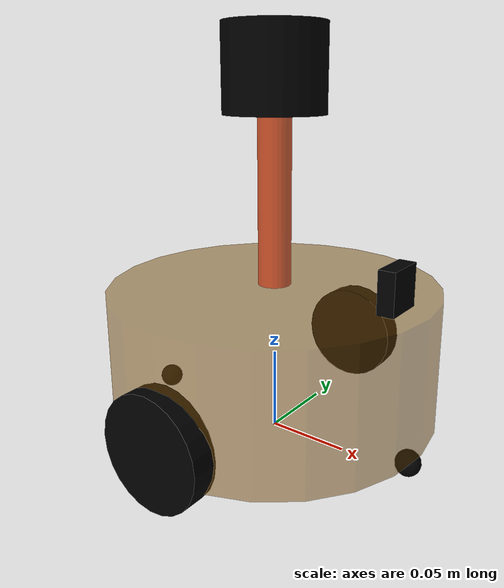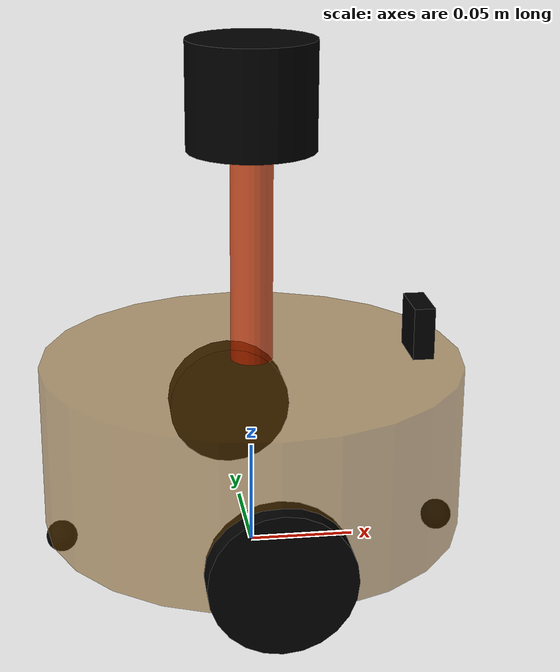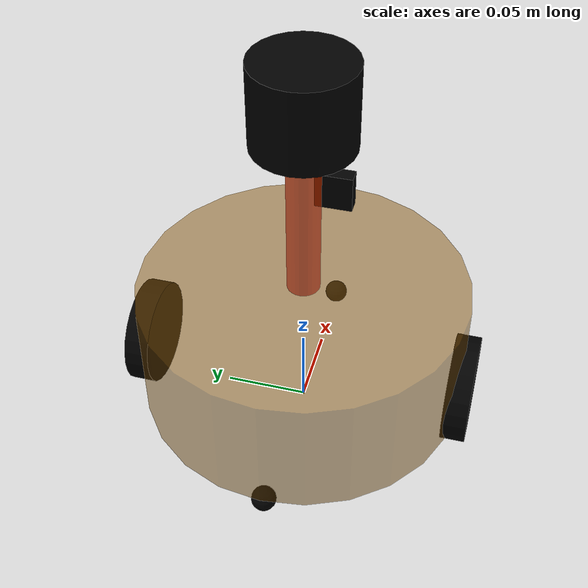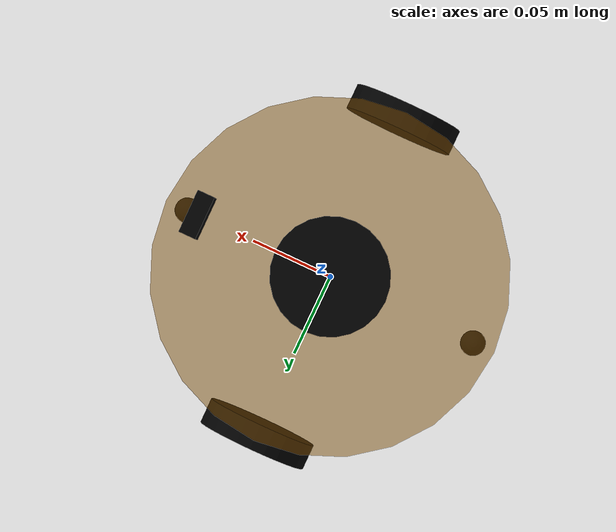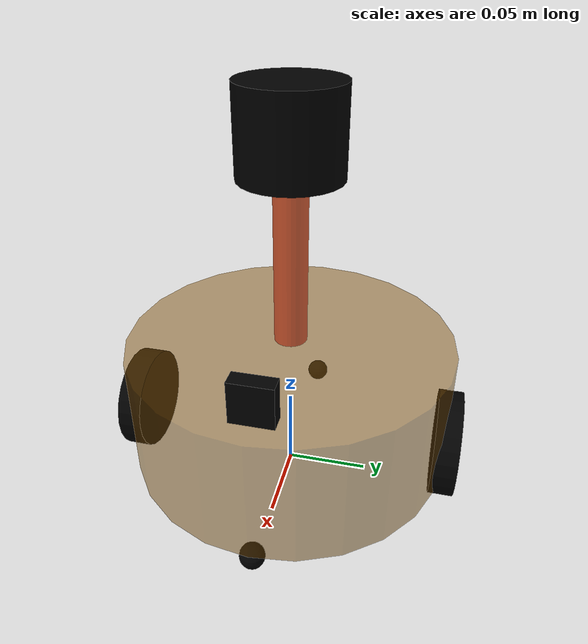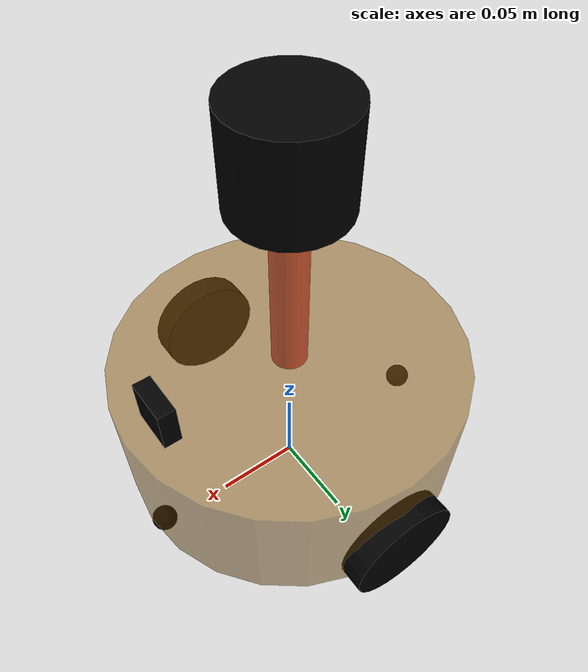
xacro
<!-- combine parts -->
<robot name="my_car_camera" xmlns:xacro="http://wiki.ros.org/xacro">
  <xacro:include filename="head.xacro" />
  <xacro:include filename="base.xacro" />
  <xacro:include filename="camera.xacro" />
  <xacro:include filename="laser.xacro" />
  <xacro:include filename="gazebo/move.xacro" />
  <xacro:include filename="gazebo/laser.xacro" />
  <xacro:include filename="gazebo/camera.xacro" />
</robot>

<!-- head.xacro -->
<robot name="base" xmlns:xacro="http://wiki.ros.org/xacro">
  <!-- Macro for inertia matrix -->
  <xacro:macro name="sphere_inertial_matrix" params="m r">
      <inertial>
          <mass value="${m}" />
          <inertia ixx="${2*m*r*r/5}" ixy="0" ixz="0"
              iyy="${2*m*r*r/5}" iyz="0"
              izz="${2*m*r*r/5}" />
      </inertial>
  </xacro:macro>

  <xacro:macro name="cylinder_inertial_matrix" params="m r h">
      <inertial>
          <mass value="${m}" />
          <inertia ixx="${m*(3*r*r+h*h)/12}" ixy = "0" ixz = "0"
              iyy="${m*(3*r*r+h*h)/12}" iyz = "0"
              izz="${m*r*r/2}" />
      </inertial>
  </xacro:macro>

  <xacro:macro name="Box_inertial_matrix" params="m l w h">
     <inertial>
             <mass value="${m}" />
             <inertia ixx="${m*(h*h + l*l)/12}" ixy = "0" ixz = "0"
                 iyy="${m*(w*w + l*l)/12}" iyz= "0"
                 izz="${m*(w*w + h*h)/12}" />
     </inertial>
 </xacro:macro>
</robot>

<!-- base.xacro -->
<robot name="my_base" xmlns:xacro="http://www.ros.org/wiki/xacro">
  <xacro:property name="PI" value="3.1415926"/>
  <material name="black">
      <color rgba="0.0 0.0 0.0 1.0" />
  </material>
  <xacro:property name="base_footprint_radius" value="0.001" /> <!-- base_footprint radius  -->
  <xacro:property name="base_link_radius" value="0.1" /> <!-- base_link radius -->
  <xacro:property name="base_link_length" value="0.08" /> <!-- base_link long -->
  <xacro:property name="earth_space" value="0.015" /> <!-- gap to ground -->
  <xacro:property name="base_link_m" value="0.5" /> <!-- mass  -->

  <link name="base_footprint">
    <visual>
      <geometry>
        <sphere radius="${base_footprint_radius}" />
      </geometry>
    </visual>
  </link>

  <link name="base_link">
    <visual>
      <geometry>
        <cylinder radius="${base_link_radius}" length="${base_link_length}" />
      </geometry>
      <origin xyz="0 0 0" rpy="0 0 0" />
      <material name="yellow">
        <color rgba="0.5 0.3 0.0 0.5" />
      </material>
    </visual>
    <collision>
      <geometry>
        <cylinder radius="${base_link_radius}" length="${base_link_length}" />
      </geometry>
      <origin xyz="0 0 0" rpy="0 0 0" />
    </collision>
    <xacro:cylinder_inertial_matrix m="${base_link_m}" r="${base_link_radius}" h="${base_link_length}" />

  </link>

  <joint name="base_link2base_footprint" type="fixed">
    <parent link="base_footprint" />
    <child link="base_link" />
    <origin xyz="0 0 ${earth_space + base_link_length / 2 }" />
  </joint>
  <gazebo reference="base_link">
      <material>Gazebo/Green</material>
  </gazebo>

  <xacro:property name="wheel_radius" value="0.0325" /><!-- radius -->
  <xacro:property name="wheel_length" value="0.015" /><!-- width -->
  <xacro:property name="wheel_m" value="0.05" /> <!-- mass  -->

  <xacro:macro name="add_wheels" params="name flag">
    <link name="${name}_wheel">
      <visual>
        <geometry>
          <cylinder radius="${wheel_radius}" length="${wheel_length}" />
        </geometry>
        <origin xyz="0.0 0.0 0.0" rpy="${PI / 2} 0.0 0.0" />
        <material name="black" />
      </visual>
      <collision>
        <geometry>
          <cylinder radius="${wheel_radius}" length="${wheel_length}" />
        </geometry>
        <origin xyz="0.0 0.0 0.0" rpy="${PI / 2} 0.0 0.0" />
      </collision>
      <xacro:cylinder_inertial_matrix m="${wheel_m}" r="${wheel_radius}" h="${wheel_length}" />

    </link>

    <joint name="${name}_wheel2base_link" type="continuous">
      <parent link="base_link" />
      <child link="${name}_wheel" />
      <origin xyz="0 ${flag * base_link_radius} ${-(earth_space + base_link_length / 2 - wheel_radius) }" />
      <axis xyz="0 1 0" />
    </joint>

    <gazebo reference="${name}_wheel">
      <material>Gazebo/Red</material>
    </gazebo>

  </xacro:macro>
  <xacro:add_wheels name="left" flag="1" />
  <xacro:add_wheels name="right" flag="-1" />

  <xacro:property name="support_wheel_radius" value="0.0075" />
  <xacro:property name="support_wheel_m" value="0.03" /> <!-- mass  -->

  <xacro:macro name="add_support_wheel" params="name flag" >
    <link name="${name}_wheel">
      <visual>
          <geometry>
              <sphere radius="${support_wheel_radius}" />
          </geometry>
          <origin xyz="0 0 0" rpy="0 0 0" />
          <material name="black" />
      </visual>
      <collision>
          <geometry>
              <sphere radius="${support_wheel_radius}" />
          </geometry>
          <origin xyz="0 0 0" rpy="0 0 0" />
      </collision>
      <xacro:sphere_inertial_matrix m="${support_wheel_m}" r="${support_wheel_radius}" />
    </link>

    <joint name="${name}_wheel2base_link" type="continuous">
        <parent link="base_link" />
        <child link="${name}_wheel" />
        <origin xyz="${flag * (base_link_radius - support_wheel_radius)} 0 ${-(base_link_length / 2 + earth_space / 2)}" />
        <axis xyz="1 1 1" />
    </joint>
    <gazebo reference="${name}_wheel">
      <material>Gazebo/Red</material>
    </gazebo>
  </xacro:macro>

  <xacro:add_support_wheel name="front" flag="1" />
  <xacro:add_support_wheel name="back" flag="-1" />

</robot>

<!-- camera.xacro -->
<!-- camera xacro 文件 -->
<robot name="my_camera" xmlns:xacro="http://wiki.ros.org/xacro">
  <!-- camera property -->
  <xacro:property name="camera_length" value="0.01" /> <!-- long(x) -->
  <xacro:property name="camera_width" value="0.025" /> <!-- width(y) -->
  <xacro:property name="camera_height" value="0.025" /> <!-- height(z) -->
  <xacro:property name="camera_x" value="0.08" /> <!-- x of installation -->
  <xacro:property name="camera_y" value="0.0" /> <!-- y of installation -->
  <xacro:property name="camera_z" value="${base_link_length / 2 + camera_height / 2}" /> <!-- z of installation: base_height / 2 + camera_height / 2  -->

  <xacro:property name="camera_m" value="0.01" /> <!-- camera mass -->

  <!-- joint and link of camera -->
  <link name="camera">
      <visual>
          <geometry>
              <box size="${camera_length} ${camera_width} ${camera_height}" />
          </geometry>
          <origin xyz="0.0 0.0 0.0" rpy="0.0 0.0 0.0" />
          <material name="black" />
      </visual>
      <collision>
          <geometry>
              <box size="${camera_length} ${camera_width} ${camera_height}" />
          </geometry>
          <origin xyz="0.0 0.0 0.0" rpy="0.0 0.0 0.0" />
      </collision>
      <xacro:Box_inertial_matrix m="${camera_m}" l="${camera_length}" w="${camera_width}" h="${camera_height}" />
  </link>

  <joint name="camera2base_link" type="fixed">
      <parent link="base_link" />
      <child link="camera" />
      <origin xyz="${camera_x} ${camera_y} ${camera_z}" />
  </joint>
  <gazebo reference="camera">
      <material>Gazebo/Blue</material>
  </gazebo>
</robot>

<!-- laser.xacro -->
<robot name="my_laser" xmlns:xacro="http://wiki.ros.org/xacro">

  <!-- support of laser -->
  <xacro:property name="support_length" value="0.1" /> <!-- 雷达支架长度 -->
  <xacro:property name="support_radius" value="0.01" /> <!--雷达支架半径  -->
  <xacro:property name="support_x" value="0.0" /> <!-- x of installation -->
  <xacro:property name="support_y" value="0.0" />
  <xacro:property name="support_z" value="${base_link_length / 2 + support_length / 2}" />

  <xacro:property name="support_m" value="0.02" /> <!-- mass of support -->

  <link name="support">
      <visual>
          <geometry>
              <cylinder radius="${support_radius}" length="${support_length}" />
          </geometry>
          <origin xyz="0.0 0.0 0.0" rpy="0.0 0.0 0.0" />
          <material name="red">
              <color rgba="0.8 0.2 0.0 0.8" />
          </material>
      </visual>

      <collision>
          <geometry>
              <cylinder radius="${support_radius}" length="${support_length}" />
          </geometry>
          <origin xyz="0.0 0.0 0.0" rpy="0.0 0.0 0.0" />
      </collision>

      <xacro:cylinder_inertial_matrix m="${support_m}" r="${support_radius}" h="${support_length}" />

  </link>

  <joint name="support2base_link" type="fixed">
      <parent link="base_link" />
      <child link="support" />
      <origin xyz="${support_x} ${support_y} ${support_z}" />
  </joint>

  <gazebo reference="support">
      <material>Gazebo/White</material>
  </gazebo>

  <!-- property of laser -->
  <xacro:property name="laser_length" value="0.05" />
  <xacro:property name="laser_radius" value="0.03" />
  <xacro:property name="laser_x" value="0.0" /> <!-- x of installation -->
  <xacro:property name="laser_y" value="0.0" />
  <xacro:property name="laser_z" value="${support_length / 2 + laser_length / 2}" />

  <xacro:property name="laser_m" value="0.1" /> <!-- mass of laser -->

  <!-- joint and link of laser -->
  <link name="laser">
      <visual>
          <geometry>
              <cylinder radius="${laser_radius}" length="${laser_length}" />
          </geometry>
          <origin xyz="0.0 0.0 0.0" rpy="0.0 0.0 0.0" />
          <material name="black" />
      </visual>
      <collision>
          <geometry>
              <cylinder radius="${laser_radius}" length="${laser_length}" />
          </geometry>
          <origin xyz="0.0 0.0 0.0" rpy="0.0 0.0 0.0" />
      </collision>
      <xacro:cylinder_inertial_matrix m="${laser_m}" r="${laser_radius}" h="${laser_length}" />
  </link>

  <joint name="laser2support" type="fixed">
      <parent link="support" />
      <child link="laser" />
      <origin xyz="${laser_x} ${laser_y} ${laser_z}" />
  </joint>
  <gazebo reference="laser">
      <material>Gazebo/Black</material>
  </gazebo>
</robot>
